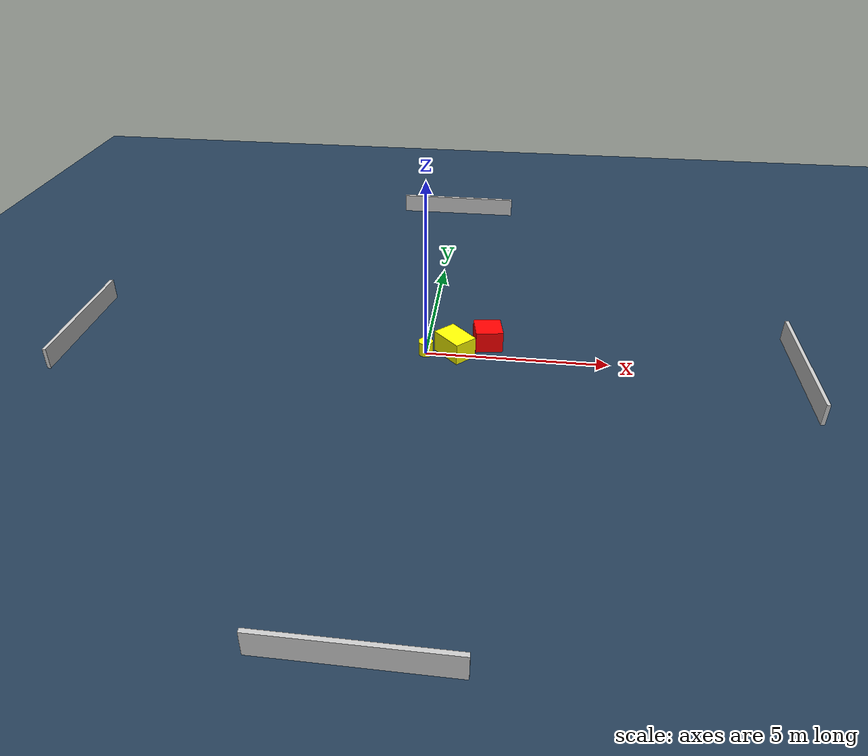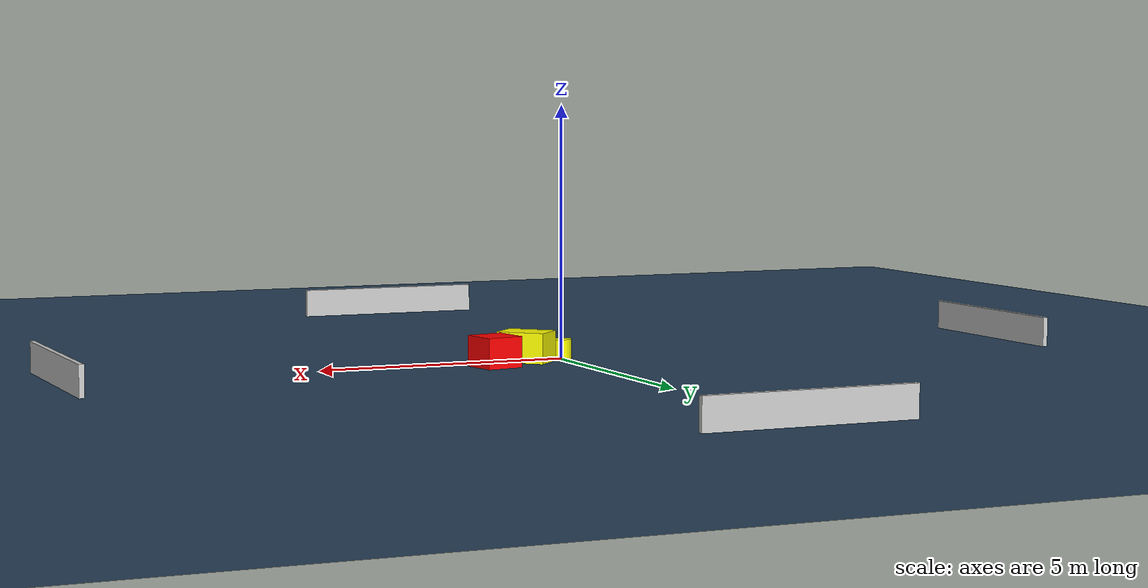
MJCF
<?xml version="1.0" ?>
<mujoco model="generated_environment">
  <option timestep="0.01" integrator="RK4" cone="elliptic"/>
  <default>
    <geom density="1"/>
  </default>
  <asset>
    <texture builtin="gradient" height="3072" name="skybox" rgb1="0.3 0.5 0.7" rgb2="0 0 0" type="skybox" width="512"/>
    <texture builtin="checker" height="300" name="groundplane" rgb1="0.2 0.3 0.4" rgb2="0.1 0.2 0.3" type="2d" width="300"/>
    <material name="groundplane" reflectance="0.2" texrepeat="5 5" texture="groundplane"/>
  </asset>
  <worldbody>
    <light dir="0 0 -1" directional="true" pos="0 0 1.5"/>
    <geom condim="3" friction="0.5 0.005 0.001" material="groundplane" name="floor" pos="0 0 0" size="0 0 0.05" type="plane"/>
    <body name="walls">
      <geom name="wall_1" condim="4" pos="-10.0 0.0 0.3" rgba="0.800000011920929 0.800000011920929 0.800000011920929 1.0" size="0.05 2.0 0.3" type="box"/>
      <geom name="wall_2" condim="4" pos="10.0 0.0 0.3" rgba="0.800000011920929 0.800000011920929 0.800000011920929 1.0" size="0.05 2.0 0.3" type="box"/>
      <geom name="wall_3" condim="4" pos="0.0 -10.0 0.3" rgba="0.800000011920929 0.800000011920929 0.800000011920929 1.0" size="2.0 0.05 0.3" type="box"/>
      <geom name="wall_4" condim="4" pos="0.0 10.0 0.3" rgba="0.800000011920929 0.800000011920929 0.800000011920929 1.0" size="2.0 0.05 0.3" type="box"/>
    </body>
    <body name="robot">
      <joint name="joint_x" type="slide" pos="0 0 0" axis="1 0 0"/>
      <joint name="joint_y" type="slide" pos="0 0 0" axis="0 1 0"/>
      <geom name="robot" type="cylinder" pos="0.0 0.0 0.2" size="0.2 0.2 0.0" mass="5.0" friction="1.0 0.005 0.0001" condim="4" rgba="1.0 1.0 0.0 1.0"/>
    </body>
    <body name="obstacle_1_movable">
      <geom name="obstacle_1_movable" condim="4" pos="0.7932914440307048 0.10790328521717325 0.3" euler="0 0 314.46691444991734" friction="0.0 0.005 0.001" rgba="1.0 1.0 0.0 1.0" size="0.4843076804502821 0.33542650293241283 0.3" type="box" mass="0.1"/>
      <joint type="free"/>
    </body>
    <body name="obstacle_2_static">
      <geom name="obstacle_2_static" condim="4" pos="1.673329360163863 0.6451159483082229 0.3" euler="0 0 190.00095515424425" friction="0.0 0.005 0.001" rgba="1.0 0.0 0.0 1.0" size="0.3769088697521188 0.3801694238900994 0.3" type="box"/>
    </body>
  </worldbody>
  <actuator>
    <motor name="actuator_x" joint="joint_x" gear="1" ctrlrange="-1 1"/>
    <motor name="actuator_y" joint="joint_y" gear="1" ctrlrange="-1 1"/>
  </actuator>
</mujoco>
